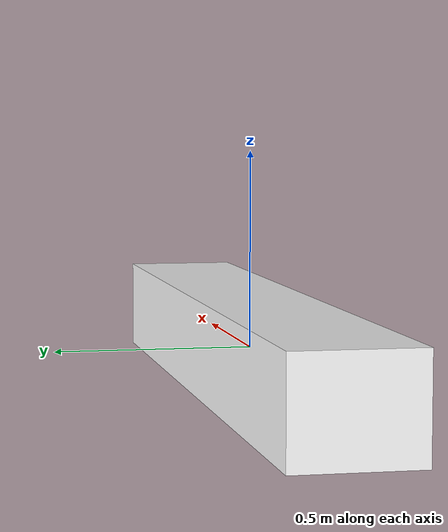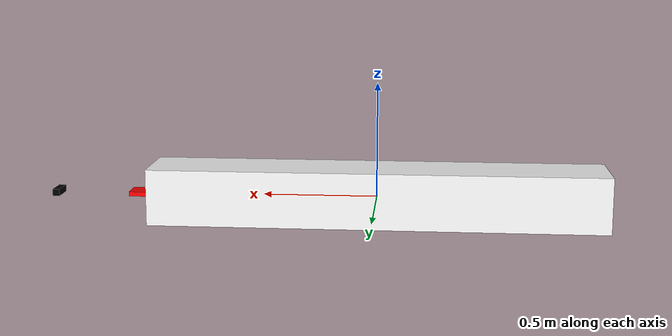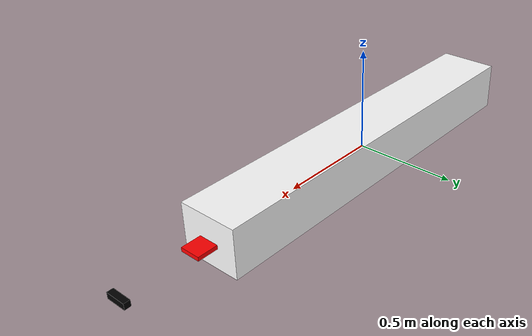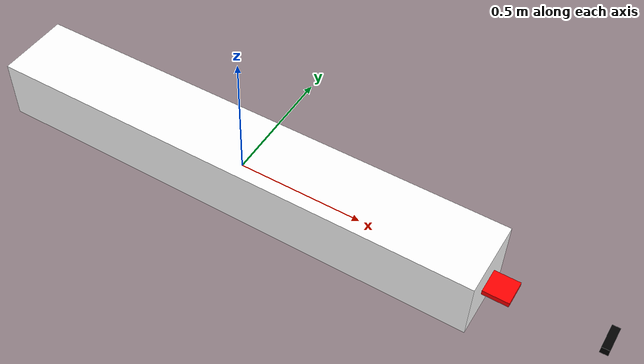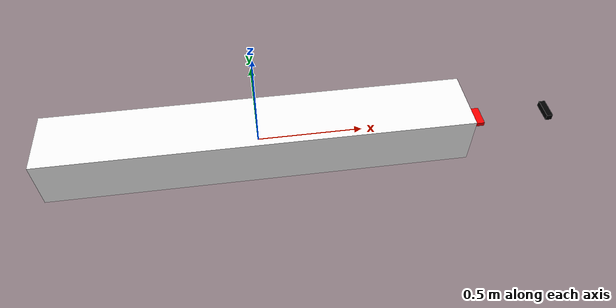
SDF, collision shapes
<?xml version="1.0"?>
<sdf version="1.9">
  <model name="tethys">
    <include merge="true">
      <uri>tethys</uri>
    </include>

    <!-- Hydrodynamic system-->
    <plugin
      filename="ignition-gazebo-hydrodynamics-system"
      name="ignition::gazebo::systems::Hydrodynamics">
        <link_name>base_link</link_name>
        <xDotU>-4.876161</xDotU>
        <yDotV>-126.324739</yDotV>
        <zDotW>-126.324739</zDotW>
        <kDotP>0</kDotP>
        <mDotQ>-33.46</mDotQ>
        <nDotR>-33.46</nDotR>
        <xUU>-6.2282</xUU>
        <xU>0</xU>
        <yVV>-601.27</yVV>
        <yV>0</yV>
        <zWW>-601.27</zWW>
        <zW>0</zW>
        <kPP>-0.1916</kPP>
        <kP>0</kP>
        <mQQ>-632.698957</mQQ>
        <mQ>0</mQ>
        <nRR>-632.698957</nRR>
        <nR>0</nR>
    </plugin>

    <!-- Thruster plugin -->
    <plugin
      filename="ignition-gazebo-thruster-system"
      name="ignition::gazebo::systems::Thruster">
      <namespace>tethys</namespace>
      <joint_name>propeller_joint</joint_name>
      <thrust_coefficient>0.004422</thrust_coefficient>
      <fluid_density>1000</fluid_density>
      <propeller_diameter>0.2</propeller_diameter>
    </plugin>
  </model>
</sdf>

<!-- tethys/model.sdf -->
<sdf version="1.6">
  <model name="tethys">
    <!-- Body -->
    <link name="base_link">
      <inertial>
        <mass>147.8671</mass>
        <inertia>
          <ixx>3.000000</ixx>
          <ixy>0</ixy>
          <ixz>0</ixz>
          <iyy>41.980233</iyy>
          <iyz>0</iyz>
          <izz>41.980233</izz>
        </inertia>
      </inertial>

      <collision name="main_body_buoyancy">
        <pose>0 0 0.007 0 0 0</pose>
        <geometry>
          <box>
            <size>2 0.3 0.246445166667</size>
          </box>
        </geometry>
      </collision>

      <visual name="visual">
        <geometry>
          <mesh>
            <uri>meshes/tethys.dae</uri>
            <submesh>
              <name>Body</name>
              <center>false</center>
            </submesh>
          </mesh>
        </geometry>
        <material>
          <diffuse>1.0 1.0 1.0</diffuse>
          <specular>1.0 1.0 1.0</specular>
          <pbr>
            <metal>
              <albedo_map>materials/textures/Tethys_Albedo.png</albedo_map>
              <normal_map>materials/textures/Tethys_Normal.png</normal_map>
              <metalness_map>materials/textures/Tethys_Metalness.png</metalness_map>
              <roughness_map>materials/textures/Tethys_Roughness.png</roughness_map>
            </metal>
          </pbr>
          <script>
            <uri>materials/scripts/</uri>
            <uri>materials/textures/</uri>
            <name>tethys/Tethys_Diffuse</name>
          </script>
        </material>
      </visual>
    </link>

    <!-- Horizontal fins -->
    <link name="horizontal_fins">
      <pose>1.05 0 0 0 0 0</pose>
      <inertial>
        <pose>0 0 0 1.57 0 0.5</pose>
        <mass>0.2</mass>
        <inertia>
          <ixx>0.0007924568755</ixx>
          <ixy>-0.0000000002674</ixy>
          <ixz>0.0003978158176</ixz>
          <iyy>0.0010546736475</iyy>
          <iyz>-0.0000000006729</iyz>
          <izz>0.0002633558262</izz>
        </inertia>
      </inertial>

      <collision name="collision">
        <geometry>
          <box>
            <size>0.1 0.1 0.02</size>
          </box>
        </geometry>
      </collision>

      <visual name= "visual">
        <pose>-1.05 0 0 0 0 0</pose>
        <geometry>
          <mesh>
            <uri>meshes/tethys.dae</uri>
            <submesh>
              <name>Fins_Horizontal</name>
              <center>false</center>
            </submesh>
          </mesh>
        </geometry>
        <material>
          <ambient>1 0 0 1</ambient>
          <diffuse>1 0 0 1</diffuse>
          <specular>1 0 0 1</specular>
        </material>
      </visual>
    </link>

    <!-- Vertical fins -->
    <link name="vertical_fins">
      <pose>1.05 0 0 0 0 0</pose>
      <inertial>
        <mass>0.2</mass>
        <inertia>
          <ixx>0.0007924568755</ixx>
          <ixy>-0.0000000002674</ixy>
          <ixz>0.0003978158176</ixz>
          <iyy>0.0010546736475</iyy>
          <iyz>-0.0000000006729</iyz>
          <izz>0.0002633558262</izz>
        </inertia>
      </inertial>

      <collision name="collision">
         <geometry>
          <box>
            <size>0.1 0.1 0.02</size>
          </box>
        </geometry>
      </collision>

      <visual name= "visual">
        <pose>-1.05 0 0 0 0 0</pose>
        <geometry>
          <mesh>
            <uri>meshes/tethys.dae</uri>
            <submesh>
              <name>Fins_vertical</name>
              <center>false</center>
            </submesh>
          </mesh>
        </geometry>
        <material>
          <ambient>1 0 0 1</ambient>
          <diffuse>1 0 0 1</diffuse>
          <specular>1 0 0 1</specular>
        </material>
      </visual>
    </link>

    <!-- Propeller -->
    <link name="propeller">
      <pose>1.43162 0 0 0 0 0</pose>
      <inertial>
        <pose>0 0 0 0 0 0</pose>
        <mass>0.09</mass>
        <inertia>
          <ixx>0.000143971303</ixx>
          <ixy>0.000000000008</ixy>
          <ixz>-0.000000000224</ixz>
          <iyy>0.000140915448</iyy>
          <iyz>-0.000025236433</iyz>
          <izz>0.000033571862</izz>
        </inertia>
      </inertial>

      <collision name="collision">
        <geometry>
          <box>
            <size>0.03 0.1 0.03</size>
          </box>
        </geometry>
      </collision>

      <visual name= "visual">
        <pose>-1.43162 0 0 0 0 0</pose>
        <geometry>
          <mesh>
            <uri>meshes/tethys.dae</uri>
            <submesh>
              <name>Prop</name>
              <center>false</center>
            </submesh>
          </mesh>
        </geometry>
        <material>
          <ambient>0 0 0 1</ambient>
          <diffuse>0 0 0 1</diffuse>
          <specular>0 0 0 1</specular>
        </material>
      </visual>

    </link>

    <!-- Joints -->
    <joint name="horizontal_fins_joint" type="revolute">
      <pose>0 0 0 0 0 0</pose>
      <parent>base_link</parent>
      <child>horizontal_fins</child>
      <axis>
        <xyz>0 1 0</xyz>
        <limit>
          <lower>-0.261799</lower>
          <upper>0.261799</upper>
          <effort>-1</effort>
          <velocity>-1</velocity>
        </limit>
      </axis>
    </joint>

    <joint name="vertical_fins_joint" type="revolute">
      <pose>0 0 0 0 0 0</pose>
      <parent>base_link</parent>
      <child>vertical_fins</child>
      <axis>
        <xyz>0 0 1</xyz>
        <limit>
          <lower>-0.261799</lower>
          <upper>0.261799</upper>
          <effort>-1</effort>
          <velocity>-1</velocity>
        </limit>
      </axis>
    </joint>

    <joint name="propeller_joint" type="revolute">
      <pose>0 0 0 0 0 0</pose>
      <parent>base_link</parent>
      <child>propeller</child>
      <axis>
        <xyz>1 0 0</xyz>
        <limit>
          <lower>-1e+12</lower>
          <upper>1e+12</upper>
          <effort>-1</effort>
          <velocity>-1</velocity>
        </limit>
      </axis>
    </joint>
  </model>
</sdf>
